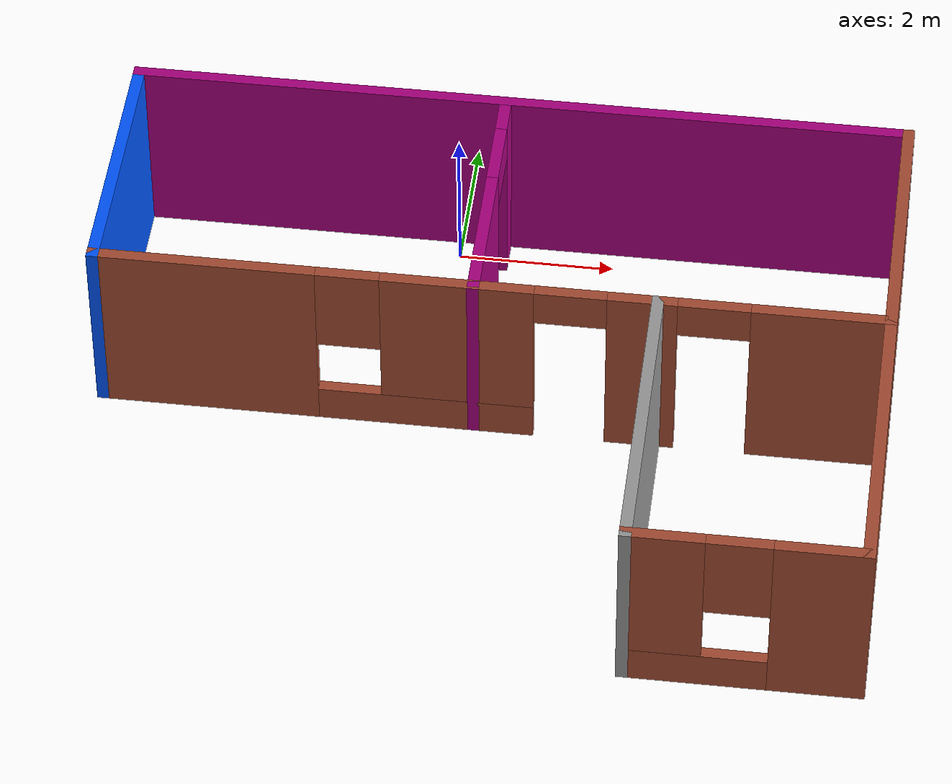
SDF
<?xml version='1.0'?>
<sdf version='1.6'>
  <model name='prj1_building'>
    <pose frame=''>0.756868 -3.26578 0 0 -0 0</pose>
    <link name='Wall_33'>
      <collision name='Wall_33_Collision'>
        <geometry>
          <box>
            <size>3.5 0.15 2.5</size>
          </box>
        </geometry>
        <pose frame=''>0 0 1.25 0 -0 0</pose>
      </collision>
      <visual name='Wall_33_Visual'>
        <pose frame=''>0 0 1.25 0 -0 0</pose>
        <geometry>
          <box>
            <size>3.5 0.15 2.5</size>
          </box>
        </geometry>
        <material>
          <script>
            <uri>file://media/materials/scripts/gazebo.material</uri>
            <name>Gazebo/Grey</name>
          </script>
          <ambient>0 0.333333 1 1</ambient>
        </material>
        <meta>
          <layer>0</layer>
        </meta>
      </visual>
      <pose frame=''>-4.925 1.925 0 0 0 -1.5708</pose>
    </link>
    <link name='Wall_34'>
      <pose frame=''>0 0.25 0 0 -0 0</pose>
      <visual name='Wall_34_Visual_0'>
        <pose frame=''>-3.57883 0 1.25 0 -0 0</pose>
        <geometry>
          <box>
            <size>2.84234 0.15 2.5</size>
          </box>
        </geometry>
        <material>
          <script>
            <uri>file://media/materials/scripts/gazebo.material</uri>
            <name>Gazebo/Bricks</name>
          </script>
          <ambient>1 1 1 1</ambient>
        </material>
        <meta>
          <layer>0</layer>
        </meta>
      </visual>
      <collision name='Wall_34_Collision_0'>
        <geometry>
          <box>
            <size>2.84234 0.15 2.5</size>
          </box>
        </geometry>
        <pose frame=''>-3.57883 0 1.25 0 -0 0</pose>
      </collision>
      <visual name='Wall_34_Visual_1'>
        <pose frame=''>1.88711 0 1.25 0 -0 0</pose>
        <geometry>
          <box>
            <size>0.866598 0.15 2.5</size>
          </box>
        </geometry>
        <material>
          <script>
            <uri>file://media/materials/scripts/gazebo.material</uri>
            <name>Gazebo/Bricks</name>
          </script>
          <ambient>1 1 1 1</ambient>
        </material>
        <meta>
          <layer>0</layer>
        </meta>
      </visual>
      <collision name='Wall_34_Collision_1'>
        <geometry>
          <box>
            <size>0.866598 0.15 2.5</size>
          </box>
        </geometry>
        <pose frame=''>1.88711 0 1.25 0 -0 0</pose>
      </collision>
      <visual name='Wall_34_Visual_2'>
        <pose frame=''>4.1102 0 1.25 0 -0 0</pose>
        <geometry>
          <box>
            <size>1.7796 0.15 2.5</size>
          </box>
        </geometry>
        <material>
          <script>
            <uri>file://media/materials/scripts/gazebo.material</uri>
            <name>Gazebo/Bricks</name>
          </script>
          <ambient>1 1 1 1</ambient>
        </material>
        <meta>
          <layer>0</layer>
        </meta>
      </visual>
      <collision name='Wall_34_Collision_2'>
        <geometry>
          <box>
            <size>1.7796 0.15 2.5</size>
          </box>
        </geometry>
        <pose frame=''>4.1102 0 1.25 0 -0 0</pose>
      </collision>
      <visual name='Wall_34_Visual_3'>
        <pose frame=''>-0.801928 0 0.25 0 -0 0</pose>
        <geometry>
          <box>
            <size>2.71147 0.15 0.5</size>
          </box>
        </geometry>
        <material>
          <script>
            <uri>file://media/materials/scripts/gazebo.material</uri>
            <name>Gazebo/Bricks</name>
          </script>
          <ambient>1 1 1 1</ambient>
        </material>
        <meta>
          <layer>0</layer>
        </meta>
      </visual>
      <collision name='Wall_34_Collision_3'>
        <geometry>
          <box>
            <size>2.71147 0.15 0.5</size>
          </box>
        </geometry>
        <pose frame=''>-0.801928 0 0.25 0 -0 0</pose>
      </collision>
      <visual name='Wall_34_Visual_4'>
        <pose frame=''>-0.401928 0 1.5 0 -0 0</pose>
        <geometry>
          <box>
            <size>1.91147 0.15 2</size>
          </box>
        </geometry>
        <material>
          <script>
            <uri>file://media/materials/scripts/gazebo.material</uri>
            <name>Gazebo/Bricks</name>
          </script>
          <ambient>1 1 1 1</ambient>
        </material>
        <meta>
          <layer>0</layer>
        </meta>
      </visual>
      <collision name='Wall_34_Collision_4'>
        <geometry>
          <box>
            <size>1.91147 0.15 2</size>
          </box>
        </geometry>
        <pose frame=''>-0.401928 0 1.5 0 -0 0</pose>
      </collision>
      <visual name='Wall_34_Visual_5'>
        <pose frame=''>-1.75766 0 1.9 0 -0 0</pose>
        <geometry>
          <box>
            <size>0.8 0.15 1.2</size>
          </box>
        </geometry>
        <material>
          <script>
            <uri>file://media/materials/scripts/gazebo.material</uri>
            <name>Gazebo/Bricks</name>
          </script>
          <ambient>1 1 1 1</ambient>
        </material>
        <meta>
          <layer>0</layer>
        </meta>
      </visual>
      <collision name='Wall_34_Collision_5'>
        <geometry>
          <box>
            <size>0.8 0.15 1.2</size>
          </box>
        </geometry>
        <pose frame=''>-1.75766 0 1.9 0 -0 0</pose>
      </collision>
      <visual name='Wall_34_Visual_6'>
        <pose frame=''>2.7704 0 2.25 0 -0 0</pose>
        <geometry>
          <box>
            <size>0.9 0.15 0.5</size>
          </box>
        </geometry>
        <material>
          <script>
            <uri>file://media/materials/scripts/gazebo.material</uri>
            <name>Gazebo/Bricks</name>
          </script>
          <ambient>1 1 1 1</ambient>
        </material>
        <meta>
          <layer>0</layer>
        </meta>
      </visual>
      <collision name='Wall_34_Collision_6'>
        <geometry>
          <box>
            <size>0.9 0.15 0.5</size>
          </box>
        </geometry>
        <pose frame=''>2.7704 0 2.25 0 -0 0</pose>
      </collision>
      <visual name='Wall_34_Visual_7'>
        <pose frame=''>1.00381 0 2.25 0 -0 0</pose>
        <geometry>
          <box>
            <size>0.9 0.15 0.5</size>
          </box>
        </geometry>
        <material>
          <script>
            <uri>file://media/materials/scripts/gazebo.material</uri>
            <name>Gazebo/Bricks</name>
          </script>
          <ambient>1 1 1 1</ambient>
        </material>
        <meta>
          <layer>0</layer>
        </meta>
      </visual>
      <collision name='Wall_34_Collision_7'>
        <geometry>
          <box>
            <size>0.9 0.15 0.5</size>
          </box>
        </geometry>
        <pose frame=''>1.00381 0 2.25 0 -0 0</pose>
      </collision>
    </link>
    <link name='Wall_35'>
      <collision name='Wall_35_Collision'>
        <geometry>
          <box>
            <size>3.5 0.15 2.5</size>
          </box>
        </geometry>
        <pose frame=''>0 0 1.25 0 -0 0</pose>
      </collision>
      <visual name='Wall_35_Visual'>
        <pose frame=''>0 0 1.25 0 -0 0</pose>
        <geometry>
          <box>
            <size>3.5 0.15 2.5</size>
          </box>
        </geometry>
        <material>
          <script>
            <uri>file://media/materials/scripts/gazebo.material</uri>
            <name>Gazebo/Bricks</name>
          </script>
          <ambient>1 1 1 1</ambient>
        </material>
        <meta>
          <layer>0</layer>
        </meta>
      </visual>
      <pose frame=''>4.925 1.925 0 0 -0 1.5708</pose>
    </link>
    <link name='Wall_36'>
      <collision name='Wall_36_Collision'>
        <geometry>
          <box>
            <size>10 0.15 2.5</size>
          </box>
        </geometry>
        <pose frame=''>0 0 1.25 0 -0 0</pose>
      </collision>
      <visual name='Wall_36_Visual'>
        <pose frame=''>0 0 1.25 0 -0 0</pose>
        <geometry>
          <box>
            <size>10 0.15 2.5</size>
          </box>
        </geometry>
        <material>
          <script>
            <uri>file://media/materials/scripts/gazebo.material</uri>
            <name>Gazebo/Grey</name>
          </script>
          <ambient>0.666667 0 0.498039 1</ambient>
        </material>
        <meta>
          <layer>0</layer>
        </meta>
      </visual>
      <pose frame=''>0 3.6 0 0 -0 3.14159</pose>
    </link>
    <link name='Wall_38'>
      <pose frame=''>-0.198311 1.925 0 0 0 -1.5708</pose>
      <visual name='Wall_38_Visual_0'>
        <pose frame=''>-1.44985 0 1.25 0 -0 0</pose>
        <geometry>
          <box>
            <size>0.600302 0.15 2.5</size>
          </box>
        </geometry>
        <material>
          <script>
            <uri>file://media/materials/scripts/gazebo.material</uri>
            <name>Gazebo/Grey</name>
          </script>
          <ambient>0.666667 0 0.498039 1</ambient>
        </material>
        <meta>
          <layer>0</layer>
        </meta>
      </visual>
      <collision name='Wall_38_Collision_0'>
        <geometry>
          <box>
            <size>0.600302 0.15 2.5</size>
          </box>
        </geometry>
        <pose frame=''>-1.44985 0 1.25 0 -0 0</pose>
      </collision>
      <visual name='Wall_38_Visual_1'>
        <pose frame=''>0.750151 0 1.25 0 -0 0</pose>
        <geometry>
          <box>
            <size>1.9997 0.15 2.5</size>
          </box>
        </geometry>
        <material>
          <script>
            <uri>file://media/materials/scripts/gazebo.material</uri>
            <name>Gazebo/Grey</name>
          </script>
          <ambient>0.666667 0 0.498039 1</ambient>
        </material>
        <meta>
          <layer>0</layer>
        </meta>
      </visual>
      <collision name='Wall_38_Collision_1'>
        <geometry>
          <box>
            <size>1.9997 0.15 2.5</size>
          </box>
        </geometry>
        <pose frame=''>0.750151 0 1.25 0 -0 0</pose>
      </collision>
      <visual name='Wall_38_Visual_2'>
        <pose frame=''>-0.699698 0 2.25 0 -0 0</pose>
        <geometry>
          <box>
            <size>0.9 0.15 0.5</size>
          </box>
        </geometry>
        <material>
          <script>
            <uri>file://media/materials/scripts/gazebo.material</uri>
            <name>Gazebo/Grey</name>
          </script>
          <ambient>0.666667 0 0.498039 1</ambient>
        </material>
        <meta>
          <layer>0</layer>
        </meta>
      </visual>
      <collision name='Wall_38_Collision_2'>
        <geometry>
          <box>
            <size>0.9 0.15 0.5</size>
          </box>
        </geometry>
        <pose frame=''>-0.699698 0 2.25 0 -0 0</pose>
      </collision>
    </link>
    <link name='Wall_44'>
      <collision name='Wall_44_Collision'>
        <geometry>
          <box>
            <size>4 0.15 2.5</size>
          </box>
        </geometry>
        <pose frame=''>0 0 1.25 0 -0 0</pose>
      </collision>
      <visual name='Wall_44_Visual'>
        <pose frame=''>0 0 1.25 0 -0 0</pose>
        <geometry>
          <box>
            <size>4 0.15 2.5</size>
          </box>
        </geometry>
        <material>
          <script>
            <uri>file://media/materials/scripts/gazebo.material</uri>
            <name>Gazebo/Bricks</name>
          </script>
          <ambient>1 1 1 1</ambient>
        </material>
        <meta>
          <layer>0</layer>
        </meta>
      </visual>
      <pose frame=''>4.925 -1.675 0 0 0 -1.5708</pose>
    </link>
    <link name='Wall_45'>
      <pose frame=''>3.5 -3.6 0 0 -0 3.14159</pose>
      <visual name='Wall_45_Visual_0'>
        <pose frame=''>-0.907945 0 1.25 0 -0 0</pose>
        <geometry>
          <box>
            <size>1.18411 0.15 2.5</size>
          </box>
        </geometry>
        <material>
          <script>
            <uri>file://media/materials/scripts/gazebo.material</uri>
            <name>Gazebo/Bricks</name>
          </script>
          <ambient>1 1 1 1</ambient>
        </material>
        <meta>
          <layer>0</layer>
        </meta>
      </visual>
      <collision name='Wall_45_Collision_0'>
        <geometry>
          <box>
            <size>1.18411 0.15 2.5</size>
          </box>
        </geometry>
        <pose frame=''>-0.907945 0 1.25 0 -0 0</pose>
      </collision>
      <visual name='Wall_45_Visual_1'>
        <pose frame=''>0.592055 0 0.25 0 -0 0</pose>
        <geometry>
          <box>
            <size>1.81589 0.15 0.5</size>
          </box>
        </geometry>
        <material>
          <script>
            <uri>file://media/materials/scripts/gazebo.material</uri>
            <name>Gazebo/Bricks</name>
          </script>
          <ambient>1 1 1 1</ambient>
        </material>
        <meta>
          <layer>0</layer>
        </meta>
      </visual>
      <collision name='Wall_45_Collision_1'>
        <geometry>
          <box>
            <size>1.81589 0.15 0.5</size>
          </box>
        </geometry>
        <pose frame=''>0.592055 0 0.25 0 -0 0</pose>
      </collision>
      <visual name='Wall_45_Visual_2'>
        <pose frame=''>0.992055 0 1.5 0 -0 0</pose>
        <geometry>
          <box>
            <size>1.01589 0.15 2</size>
          </box>
        </geometry>
        <material>
          <script>
            <uri>file://media/materials/scripts/gazebo.material</uri>
            <name>Gazebo/Bricks</name>
          </script>
          <ambient>1 1 1 1</ambient>
        </material>
        <meta>
          <layer>0</layer>
        </meta>
      </visual>
      <collision name='Wall_45_Collision_2'>
        <geometry>
          <box>
            <size>1.01589 0.15 2</size>
          </box>
        </geometry>
        <pose frame=''>0.992055 0 1.5 0 -0 0</pose>
      </collision>
      <visual name='Wall_45_Visual_3'>
        <pose frame=''>0.08411 0 1.9 0 -0 0</pose>
        <geometry>
          <box>
            <size>0.8 0.15 1.2</size>
          </box>
        </geometry>
        <material>
          <script>
            <uri>file://media/materials/scripts/gazebo.material</uri>
            <name>Gazebo/Bricks</name>
          </script>
          <ambient>1 1 1 1</ambient>
        </material>
        <meta>
          <layer>0</layer>
        </meta>
      </visual>
      <collision name='Wall_45_Collision_3'>
        <geometry>
          <box>
            <size>0.8 0.15 1.2</size>
          </box>
        </geometry>
        <pose frame=''>0.08411 0 1.9 0 -0 0</pose>
      </collision>
    </link>
    <link name='Wall_46'>
      <collision name='Wall_46_Collision'>
        <geometry>
          <box>
            <size>4 0.15 2.5</size>
          </box>
        </geometry>
        <pose frame=''>0 0 1.25 0 -0 0</pose>
      </collision>
      <visual name='Wall_46_Visual'>
        <pose frame=''>0 0 1.25 0 -0 0</pose>
        <geometry>
          <box>
            <size>4 0.15 2.5</size>
          </box>
        </geometry>
        <material>
          <script>
            <uri>file://media/materials/scripts/gazebo.material</uri>
            <name>Gazebo/Grey</name>
          </script>
          <ambient>1 1 1 1</ambient>
        </material>
        <meta>
          <layer>0</layer>
        </meta>
      </visual>
      <pose frame=''>2.075 -1.675 0 0 -0 1.5708</pose>
    </link>
    <static>1</static>
  </model>
</sdf>
